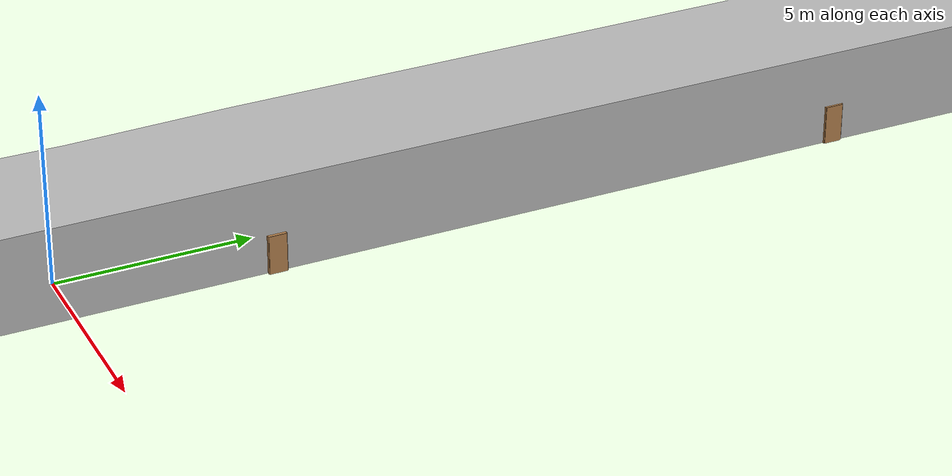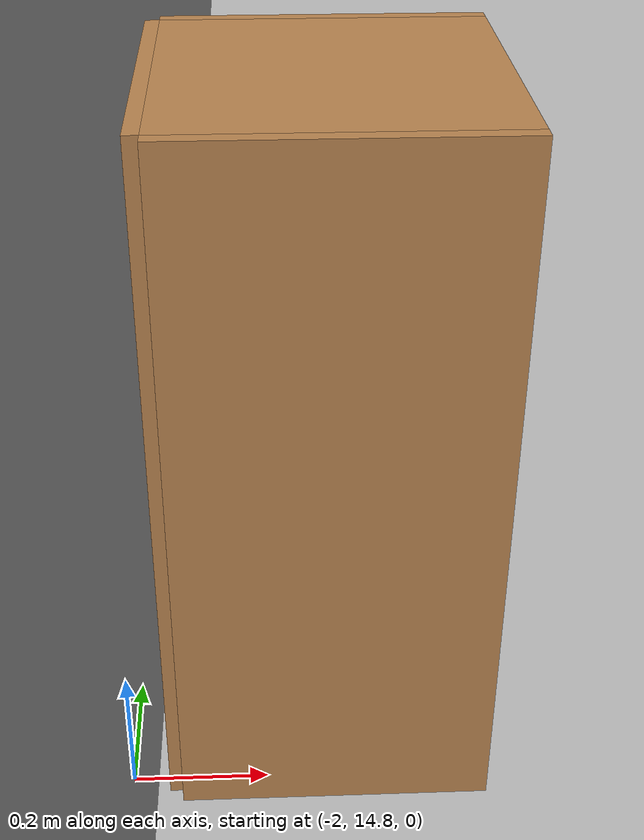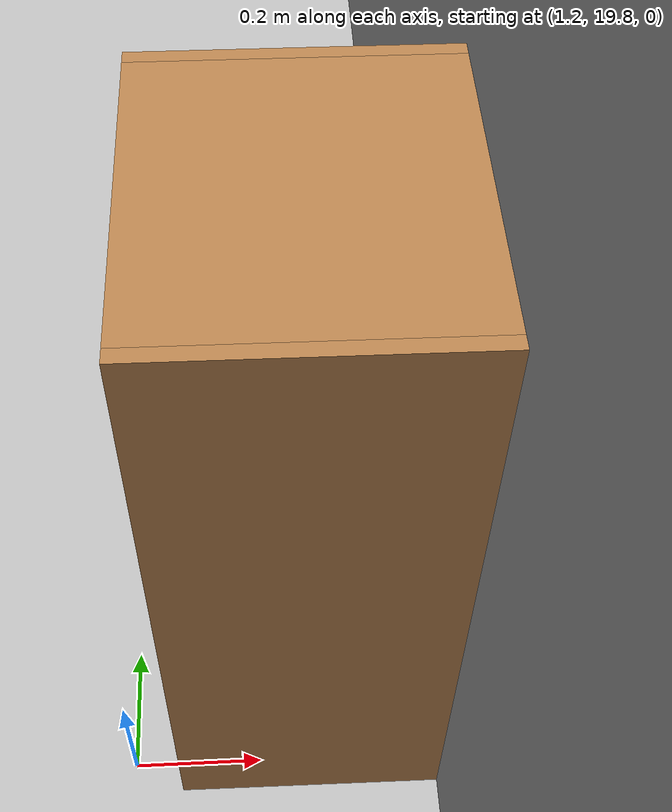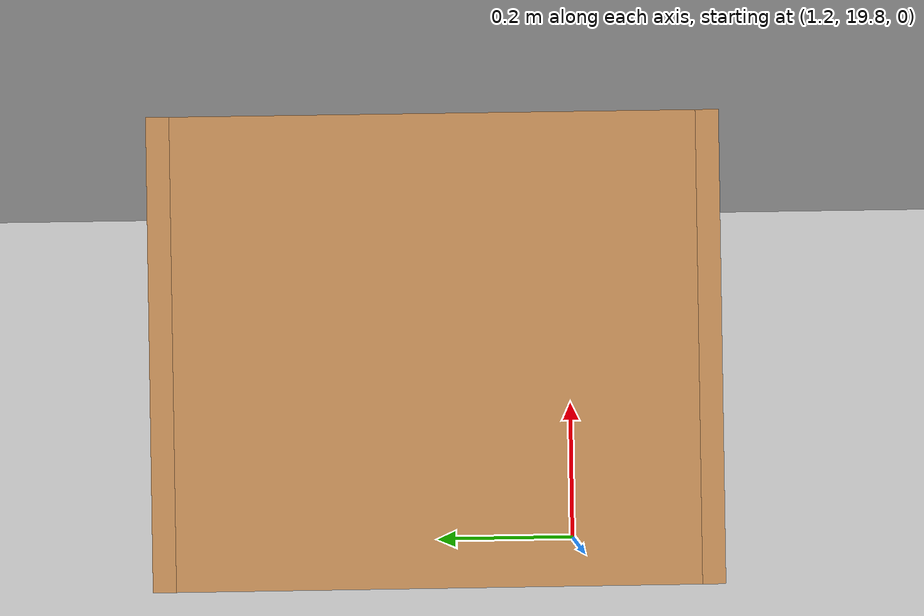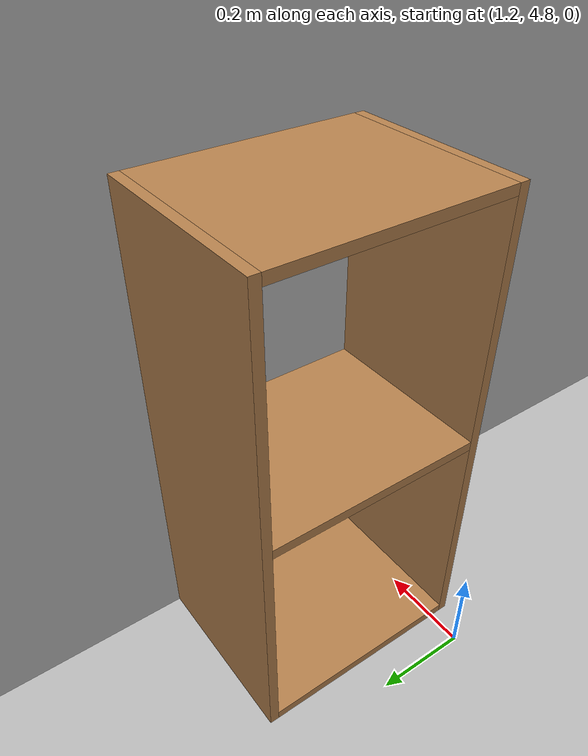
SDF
<?xml version="1.0"?>
<sdf version='1.4'>
  <world name='default'>
    <light name='sun' type='directional'>
      <cast_shadows>1</cast_shadows>
      <pose>0 0 10 0 -0 0</pose>
      <diffuse>0.8 0.8 0.8 1</diffuse>
      <specular>0.2 0.2 0.2 1</specular>
      <attenuation>
        <range>1000</range>
        <constant>0.9</constant>
        <linear>0.01</linear>
        <quadratic>0.001</quadratic>
      </attenuation>
      <direction>-0.5 0.1 -0.9</direction>
    </light>
    <include><uri>model://esat_corridor_v2</uri></include>
    <physics type='ode'>
      <max_step_size>0.001</max_step_size>
      <real_time_factor>1</real_time_factor>
      <real_time_update_rate>1000</real_time_update_rate>
      <gravity>0 0 -9.8</gravity>
    </physics>
    <scene>
      <ambient>0.1 0.1 0.1 1</ambient>
      <background>0.1 0.1 0.1 1</background>
      <shadows>0</shadows>
    </scene>
    <spherical_coordinates>
      <surface_model>EARTH_WGS84</surface_model>
      <latitude_deg>0</latitude_deg>
      <longitude_deg>0</longitude_deg>
      <elevation>0</elevation>
      <heading_deg>0</heading_deg>
    </spherical_coordinates>
    <light name='lightball' type='diffuse'>
      <cast_shadows>1</cast_shadows>
      <diffuse>0.8 0.8 0.8 1</diffuse>
      <attenuation>
        <range>1000</range>
        <constant>0.3</constant>
        <linear>0.01</linear>
        <quadratic>0.001</quadratic>
      </attenuation>
      <direction>-0.5 0.1 -0.9</direction>
      <pose>0 0 2 0 -0 0</pose>
    </light>
    <light name='lightball2' type='diffuse'>
      <cast_shadows>1</cast_shadows>
      <diffuse>0.8 0.8 0.8 1</diffuse>
      <attenuation>
        <range>1000</range>
        <constant>0.3</constant>
        <linear>0.01</linear>
        <quadratic>0.001</quadratic>
      </attenuation>
      <direction>-0.5 0.1 -0.9</direction>
      <pose>0 12 2 2 -0 0</pose>
    </light>
    <light name='lightball2b' type='diffuse'>
      <cast_shadows>1</cast_shadows>
      <diffuse>0.8 0.8 0.8 1</diffuse>
      <attenuation>
        <range>1000</range>
        <constant>0.3</constant>
        <linear>0.01</linear>
        <quadratic>0.001</quadratic>
      </attenuation>
      <direction>0.5 -0.1 0.9</direction>
      <pose>0 24 1.5 2 -0 0</pose>
    </light>
    <light name='lightball2a' type='diffuse'>
      <cast_shadows>1</cast_shadows>
      <diffuse>0.8 0.8 0.8 1</diffuse>
      <attenuation>
        <range>1000</range>
        <constant>0.3</constant>
        <linear>0.01</linear>
        <quadratic>0.001</quadratic>
      </attenuation>
      <direction>-0.5 0.1 -0.9</direction>
      <pose>0 36 2 0 -0 0</pose>
    </light>
    <light name='lightball3' type='diffuse'>
      <cast_shadows>1</cast_shadows>
      <diffuse>0.8 0.8 0.8 1</diffuse>
      <attenuation>
        <range>1000</range>
        <constant>0.3</constant>
        <linear>0.01</linear>
        <quadratic>0.001</quadratic>
      </attenuation>
      <direction>0 0 0</direction>
      <pose>-5 37 1.5 0 -0 0</pose>
    </light>
    <light name='lightball3a' type='diffuse'>
      <cast_shadows>1</cast_shadows>
      <diffuse>0.8 0.8 0.8 1</diffuse>
      <attenuation>
        <range>1000</range>
        <constant>0.3</constant>
        <linear>0.01</linear>
        <quadratic>0.001</quadratic>
      </attenuation>
      <direction>0.5 0.1 0.9</direction>
      <pose>-15 37 1.5 0 -0 -0.</pose>
    </light>
    <light name='lightball3b' type='diffuse'>
      <cast_shadows>1</cast_shadows>
      <diffuse>0.8 0.8 0.8 1</diffuse>
      <attenuation>
        <range>1000</range>
        <constant>0.3</constant>
        <linear>0.01</linear>
        <quadratic>0.001</quadratic>
      </attenuation>
      <direction>-0.5 0.1 -0.9</direction>
      <pose>-23 37 1.5 0 -0 0</pose>
    </light>
    <light name='lightball3c' type='diffuse'>
      <cast_shadows>1</cast_shadows>
      <diffuse>0.8 0.8 0.8 1</diffuse>
      <attenuation>
        <range>1000</range>
        <constant>0.3</constant>
        <linear>0.01</linear>
        <quadratic>0.001</quadratic>
      </attenuation>
      <direction>0.5 0.1 -0.9</direction>
      <pose>-10 37 1.5 0 -0.5 0.8</pose>
    </light>
    <light name='lightball3d' type='diffuse'>
      <cast_shadows>1</cast_shadows>
      <diffuse>0.8 0.8 0.8 1</diffuse>
      <attenuation>
        <range>1000</range>
        <constant>0.3</constant>
        <linear>0.01</linear>
        <quadratic>0.001</quadratic>
      </attenuation>
      <direction>-0.5 0.1 1.7</direction>
      <pose>-23 35 2 0.1 0.5 0</pose>
    </light>
    <light name='lightball4' type='diffuse'>
      <cast_shadows>1</cast_shadows>
      <diffuse>0.8 0.8 0.8 1</diffuse>
      <attenuation>
        <range>1000</range>
        <constant>0.3</constant>
        <linear>0.01</linear>
        <quadratic>0.001</quadratic>
      </attenuation>
      <direction>-0.5 0.1 -0.9</direction>
      <pose>-30 36 2 0 -0 0</pose>
    </light>
    <light name='lightball4a' type='diffuse'>
      <cast_shadows>1</cast_shadows>
      <diffuse>0.8 0.8 0.8 1</diffuse>
      <attenuation>
        <range>1000</range>
        <constant>0.3</constant>
        <linear>0.01</linear>
        <quadratic>0.001</quadratic>
      </attenuation>
      <direction>-0.5 0.1 -0.9</direction>
      <pose>-37 36 2 0 -0 0</pose>
    </light>
    <light name='lightball4b' type='diffuse'>
      <cast_shadows>1</cast_shadows>
      <diffuse>0.8 0.8 0.8 1</diffuse>
      <attenuation>
        <range>1000</range>
        <constant>0.3</constant>
        <linear>0.01</linear>
        <quadratic>0.001</quadratic>
      </attenuation>
      <direction>-0.5 0.1 -0.9</direction>
      <pose>-45 36 2 0 -0 0</pose>
    </light>
    <light name='lightball5' type='diffuse'>
      <cast_shadows>1</cast_shadows>
      <diffuse>0.8 0.8 0.8 1</diffuse>
      <attenuation>
        <range>1000</range>
        <constant>0.9</constant>
        <linear>0.01</linear>
        <quadratic>0.001</quadratic>
      </attenuation>
      <direction>-0.5 0.1 -0.9</direction>
      <pose>-55 36 2 0 -0 0</pose>
    </light>
    <light name='lightball5a' type='diffuse'>
      <cast_shadows>1</cast_shadows>
      <diffuse>0.8 0.8 0.8 1</diffuse>
      <attenuation>
        <range>1000</range>
        <constant>0.9</constant>
        <linear>0.01</linear>
        <quadratic>0.001</quadratic>
      </attenuation>
      <direction>-0.5 0.1 -0.9</direction>
      <pose>-56 24 2 0 -0 0</pose>
    </light>
    <light name='lightball5b' type='diffuse'>
      <cast_shadows>1</cast_shadows>
      <diffuse>0.8 0.8 0.8 1</diffuse>
      <attenuation>
        <range>1000</range>
        <constant>0.9</constant>
        <linear>0.01</linear>
        <quadratic>0.001</quadratic>
      </attenuation>
      <direction>-0.5 0.1 -0.9</direction>
      <pose>-55 12 2 0 -0 0</pose>
    </light>
    <include><uri>model://cabinet</uri><pose>-1.7 15 0 0 0 3.14</pose></include>
    <include><uri>model://cabinet</uri><pose>1.5 20 0 0 0 0</pose></include>
    <include><uri>model://cabinet</uri><pose>1.5 5 0 0 0 0</pose></include>
    <gui fullscreen='0'>
      <camera name='user_camera'>
        <pose>0 0 2 0 0 1.76</pose>
        <view_controller>orbit</view_controller>
      </camera>
    </gui>
  </world>
</sdf>

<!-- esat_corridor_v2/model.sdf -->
<sdf version='1.4'>
  <model name='esat_corridor_v2'>
    <pose>-41 11 0  0 0 3.14</pose>
      <static>1</static>
      <link name='body'>
        <visual name='visual'>
          <geometry>
            <mesh>
              <uri>model://esat_corridor_v2/outline_corridor_doors_floor_wall_finishing.dae</uri>
            </mesh>
          </geometry>
        </visual>
        <collision name='collision'>
          <geometry>
            <mesh>
              <uri>model://esat_corridor_v2/outline_corridor_doors_floor_wall_finishing.dae</uri>
            </mesh>
          </geometry>
          <max_contacts>10000</max_contacts>
          <surface>
            <bounce/>
            <friction>
              <ode/>
            </friction>
            <contact>
              <ode/>
            </contact>
          </surface>
        </collision>
        <velocity_decay>
          <linear>0</linear>
          <angular>0</angular>
        </velocity_decay>
        <self_collide>0</self_collide>
        <kinematic>0</kinematic>
        <gravity>1</gravity>
      </link>
    </model>
</sdf>

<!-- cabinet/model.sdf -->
<sdf version="1.5">
  <model name="cabinet">
    <static>true</static>
    <link name="cabinet_bottom_plate">
      <inertial>
        <pose>0 0 -1 0 0 0</pose>
        <inertia>
          <ixx>2.050000</ixx>
          <ixy>0</ixy>
          <ixz>0</ixz>
          <iyy>2.050000</iyy>
          <iyz>0</iyz>
          <izz>2.050000</izz>
        </inertia>
        <mass>25.000000</mass>
      </inertial>
      <collision name="cabinet_bottom_plate_geom">
        <pose>0 0 0.010000 0 0 0</pose>
        <geometry>
          <box>
            <size>0.450000 0.450000 0.020000</size>
          </box>
        </geometry>
      </collision>
      <visual name="cabinet_bottom_plate_geom_visual">
        <pose>0 0 0.010000 0 0 0</pose>
        <geometry>
          <box>
            <size>0.450000 0.450000 0.020000</size>
          </box>
        </geometry>
        <material>
          <script>
            <uri>model://media/materials/scripts/gazebo.material</uri>
            <name>Gazebo/Wood</name>
          </script>
        </material>
      </visual>
      <collision name="cabinet_bottom_plate_geom_cabinet_back_plate">
        <pose>0.235000 0 0.510000 0 0 0</pose>
        <geometry>
          <box>
            <size>0.020000 0.450000 1.020000</size>
          </box>
        </geometry>
      </collision>
      <visual name="cabinet_bottom_plate_geom_cabinet_back_plate_visual">
        <pose>0.235000 0 0.510000 0 0 0</pose>
        <geometry>
          <box>
            <size>0.020000 0.450000 1.020000</size>
          </box>
        </geometry>
        <material>
          <script>
            <uri>model://media/materials/scripts/gazebo.material</uri>
            <name>Gazebo/Wood</name>
          </script>
        </material>
      </visual>
      <collision name="cabinet_bottom_plate_geom_cabinet_left_plate">
        <pose>0 0.235000 0.510000 0 0 0</pose>
        <geometry>
          <box>
            <size>0.450000 0.020000 1.020000</size>
          </box>
        </geometry>
      </collision>
      <visual name="cabinet_bottom_plate_geom_cabinet_left_plate_visual">
        <pose>0 0.235000 0.510000 0 0 0</pose>
        <geometry>
          <box>
            <size>0.450000 0.020000 1.020000</size>
          </box>
        </geometry>
        <material>
          <script>
            <uri>model://media/materials/scripts/gazebo.material</uri>
            <name>Gazebo/Wood</name>
          </script>
        </material>
      </visual>
      <collision name="cabinet_bottom_plate_geom_cabinet_middle_plate">
        <pose>0 0 0.510000 0 0 0</pose>
        <geometry>
          <box>
            <size>0.450000 0.450000 0.020000</size>
          </box>
        </geometry>
      </collision>
      <visual name="cabinet_bottom_plate_geom_cabinet_middle_plate_visual">
        <pose>0 0 0.510000 0 0 0</pose>
        <geometry>
          <box>
            <size>0.450000 0.450000 0.020000</size>
          </box>
        </geometry>
        <material>
          <script>
            <uri>model://media/materials/scripts/gazebo.material</uri>
            <name>Gazebo/Wood</name>
          </script>
        </material>
      </visual>
      <collision name="cabinet_bottom_plate_geom_cabinet_right_plate">
        <pose>0 -0.235000 0.510000 0 0 0</pose>
        <geometry>
          <box>
            <size>0.450000 0.020000 1.020000</size>
          </box>
        </geometry>
      </collision>
      <visual name="cabinet_bottom_plate_geom_cabinet_right_plate_visual">
        <pose>0 -0.235000 0.510000 0 0 0</pose>
        <geometry>
          <box>
            <size>0.450000 0.020000 1.020000</size>
          </box>
        </geometry>
        <material>
          <script>
            <uri>model://media/materials/scripts/gazebo.material</uri>
            <name>Gazebo/Wood</name>
          </script>
        </material>
      </visual>
      <collision name="cabinet_bottom_plate_geom_cabinet_top_plate">
        <pose>0 0 1.010000 0 0 0</pose>
        <geometry>
          <box>
            <size>0.450000 0.450000 0.020000</size>
          </box>
        </geometry>
      </collision>
      <visual name="cabinet_bottom_plate_geom_cabinet_top_plate_visual">
        <pose>0 0 1.010000 0 0 0</pose>
        <geometry>
          <box>
            <size>0.450000 0.450000 0.020000</size>
          </box>
        </geometry>
        <material>
          <script>
            <uri>model://media/materials/scripts/gazebo.material</uri>
            <name>Gazebo/Wood</name>
          </script>
        </material>
      </visual>
    </link>
  </model>
</sdf>
